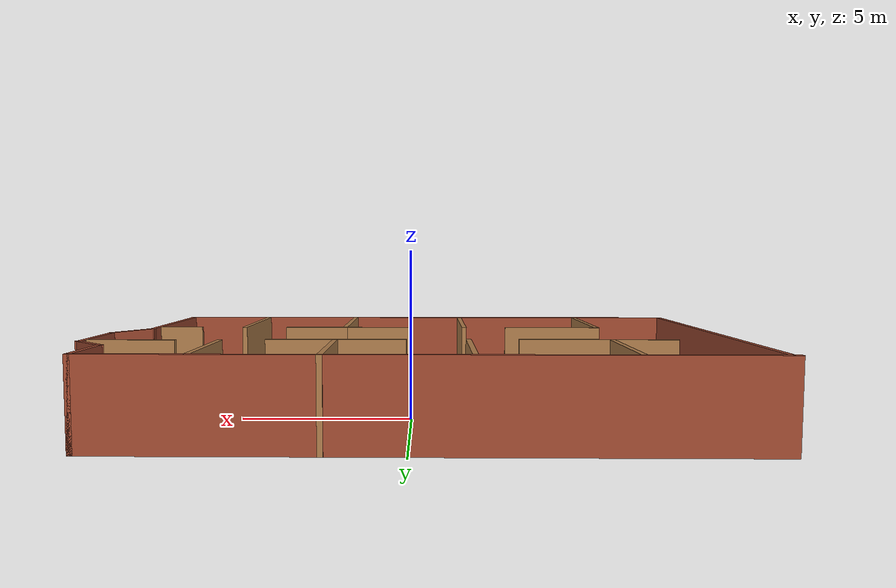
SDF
<?xml version='1.0'?>
<sdf version='1.6'>
  <model name='mybuilding'>
    <pose frame=''>-0.077377 -1.31008 0 0 -0 0</pose>
    <link name='Wall_10'>
      <collision name='Wall_10_Collision'>
        <geometry>
          <box>
            <size>17.75 0.15 2.5</size>
          </box>
        </geometry>
        <pose frame=''>0 0 1.25 0 -0 0</pose>
      </collision>
      <visual name='Wall_10_Visual'>
        <pose frame=''>0 0 1.25 0 -0 0</pose>
        <geometry>
          <box>
            <size>17.75 0.15 2.5</size>
          </box>
        </geometry>
        <material>
          <script>
            <uri>file://media/materials/scripts/gazebo.material</uri>
            <name>Gazebo/Bricks</name>
          </script>
          <ambient>1 1 1 1</ambient>
        </material>
        <meta>
          <layer>0</layer>
        </meta>
      </visual>
      <pose frame=''>-0.49283 6.05016 0 0 -0 0</pose>
    </link>
    <link name='Wall_11'>
      <collision name='Wall_11_Collision'>
        <geometry>
          <box>
            <size>2.25 0.15 2.5</size>
          </box>
        </geometry>
        <pose frame=''>0 0 1.25 0 -0 0</pose>
      </collision>
      <visual name='Wall_11_Visual'>
        <pose frame=''>0 0 1.25 0 -0 0</pose>
        <geometry>
          <box>
            <size>2.25 0.15 2.5</size>
          </box>
        </geometry>
        <material>
          <script>
            <uri>file://media/materials/scripts/gazebo.material</uri>
            <name>Gazebo/Bricks</name>
          </script>
          <ambient>1 1 1 1</ambient>
        </material>
        <meta>
          <layer>0</layer>
        </meta>
      </visual>
      <pose frame=''>8.30717 5.00016 0 0 0 -1.5708</pose>
    </link>
    <link name='Wall_12'>
      <collision name='Wall_12_Collision'>
        <geometry>
          <box>
            <size>1.5 0.15 2.5</size>
          </box>
        </geometry>
        <pose frame=''>0 0 1.25 0 -0 0</pose>
      </collision>
      <visual name='Wall_12_Visual'>
        <pose frame=''>0 0 1.25 0 -0 0</pose>
        <geometry>
          <box>
            <size>1.5 0.15 2.5</size>
          </box>
        </geometry>
        <material>
          <script>
            <uri>file://media/materials/scripts/gazebo.material</uri>
            <name>Gazebo/Bricks</name>
          </script>
          <ambient>1 1 1 1</ambient>
        </material>
        <meta>
          <layer>0</layer>
        </meta>
      </visual>
      <pose frame=''>8.78447 3.47287 0 0 0 -0.785398</pose>
    </link>
    <link name='Wall_13'>
      <collision name='Wall_13_Collision'>
        <geometry>
          <box>
            <size>2.75 0.15 2.5</size>
          </box>
        </geometry>
        <pose frame=''>0 0 1.25 0 -0 0</pose>
      </collision>
      <visual name='Wall_13_Visual'>
        <pose frame=''>0 0 1.25 0 -0 0</pose>
        <geometry>
          <box>
            <size>2.75 0.15 2.5</size>
          </box>
        </geometry>
        <material>
          <script>
            <uri>file://media/materials/scripts/gazebo.material</uri>
            <name>Gazebo/Bricks</name>
          </script>
          <ambient>1 1 1 1</ambient>
        </material>
        <meta>
          <layer>0</layer>
        </meta>
      </visual>
      <pose frame=''>9.26177 1.69557 0 0 0 -1.5708</pose>
    </link>
    <link name='Wall_14'>
      <collision name='Wall_14_Collision'>
        <geometry>
          <box>
            <size>1.75 0.15 2.5</size>
          </box>
        </geometry>
        <pose frame=''>0 0 1.25 0 -0 0</pose>
      </collision>
      <visual name='Wall_14_Visual'>
        <pose frame=''>0 0 1.25 0 -0 0</pose>
        <geometry>
          <box>
            <size>1.75 0.15 2.5</size>
          </box>
        </geometry>
        <material>
          <script>
            <uri>file://media/materials/scripts/gazebo.material</uri>
            <name>Gazebo/Bricks</name>
          </script>
          <ambient>1 1 1 1</ambient>
        </material>
        <meta>
          <layer>0</layer>
        </meta>
      </visual>
      <pose frame=''>8.86176 -0.297251 0 0 0 -2.0944</pose>
    </link>
    <link name='Wall_15'>
      <collision name='Wall_15_Collision'>
        <geometry>
          <box>
            <size>5.25 0.15 2.5</size>
          </box>
        </geometry>
        <pose frame=''>0 0 1.25 0 -0 0</pose>
      </collision>
      <visual name='Wall_15_Visual'>
        <pose frame=''>0 0 1.25 0 -0 0</pose>
        <geometry>
          <box>
            <size>5.25 0.15 2.5</size>
          </box>
        </geometry>
        <material>
          <script>
            <uri>file://media/materials/scripts/gazebo.material</uri>
            <name>Gazebo/Bricks</name>
          </script>
          <ambient>1 1 1 1</ambient>
        </material>
        <meta>
          <layer>0</layer>
        </meta>
      </visual>
      <pose frame=''>8.46176 -3.54007 0 0 0 -1.5708</pose>
    </link>
    <link name='Wall_16'>
      <collision name='Wall_16_Collision'>
        <geometry>
          <box>
            <size>17.75 0.15 2.5</size>
          </box>
        </geometry>
        <pose frame=''>0 0 1.25 0 -0 0</pose>
      </collision>
      <visual name='Wall_16_Visual'>
        <pose frame=''>0 0 1.25 0 -0 0</pose>
        <geometry>
          <box>
            <size>17.75 0.15 2.5</size>
          </box>
        </geometry>
        <material>
          <script>
            <uri>file://media/materials/scripts/gazebo.material</uri>
            <name>Gazebo/Bricks</name>
          </script>
          <ambient>1 1 1 1</ambient>
        </material>
        <meta>
          <layer>0</layer>
        </meta>
      </visual>
      <pose frame=''>-0.338236 -6.09007 0 0 -0 3.14159</pose>
    </link>
    <link name='Wall_17'>
      <collision name='Wall_17_Collision'>
        <geometry>
          <box>
            <size>12.25 0.15 2.5</size>
          </box>
        </geometry>
        <pose frame=''>0 0 1.25 0 -0 0</pose>
      </collision>
      <visual name='Wall_17_Visual'>
        <pose frame=''>0 0 1.25 0 -0 0</pose>
        <geometry>
          <box>
            <size>12.25 0.15 2.5</size>
          </box>
        </geometry>
        <material>
          <script>
            <uri>file://media/materials/scripts/gazebo.material</uri>
            <name>Gazebo/Bricks</name>
          </script>
          <ambient>1 1 1 1</ambient>
        </material>
        <meta>
          <layer>0</layer>
        </meta>
      </visual>
      <pose frame=''>-9.13824 -0.040072 0 0 -0 1.5708</pose>
    </link>
    <link name='Wall_27'>
      <collision name='Wall_27_Collision'>
        <geometry>
          <box>
            <size>3.067 0.15 2.5</size>
          </box>
        </geometry>
        <pose frame=''>0 0 1.25 0 -0 0</pose>
      </collision>
      <visual name='Wall_27_Visual'>
        <pose frame=''>0 0 1.25 0 -0 0</pose>
        <geometry>
          <box>
            <size>3.067 0.15 2.5</size>
          </box>
        </geometry>
        <material>
          <script>
            <uri>file://media/materials/scripts/gazebo.material</uri>
            <name>Gazebo/Wood</name>
          </script>
          <ambient>1 1 1 1</ambient>
        </material>
        <meta>
          <layer>0</layer>
        </meta>
      </visual>
      <pose frame=''>-4.48112 -1.63592 0 0 -0 3.14159</pose>
    </link>
    <link name='Wall_28'>
      <collision name='Wall_28_Collision'>
        <geometry>
          <box>
            <size>4.5 0.15 2.5</size>
          </box>
        </geometry>
        <pose frame=''>0 0 1.25 0 -0 0</pose>
      </collision>
      <visual name='Wall_28_Visual'>
        <pose frame=''>0 0 1.25 0 -0 0</pose>
        <geometry>
          <box>
            <size>4.5 0.15 2.5</size>
          </box>
        </geometry>
        <material>
          <script>
            <uri>file://media/materials/scripts/gazebo.material</uri>
            <name>Gazebo/Wood</name>
          </script>
          <ambient>1 1 1 1</ambient>
        </material>
        <meta>
          <layer>0</layer>
        </meta>
      </visual>
      <pose frame=''>-5.93341 -3.81116 0 0 0 -1.56794</pose>
    </link>
    <link name='Wall_33'>
      <collision name='Wall_33_Collision'>
        <geometry>
          <box>
            <size>4.5 0.15 2.5</size>
          </box>
        </geometry>
        <pose frame=''>0 0 1.25 0 -0 0</pose>
      </collision>
      <visual name='Wall_33_Visual'>
        <pose frame=''>0 0 1.25 0 -0 0</pose>
        <geometry>
          <box>
            <size>4.5 0.15 2.5</size>
          </box>
        </geometry>
        <material>
          <script>
            <uri>file://media/materials/scripts/gazebo.material</uri>
            <name>Gazebo/Wood</name>
          </script>
          <ambient>1 1 1 1</ambient>
        </material>
        <meta>
          <layer>0</layer>
        </meta>
      </visual>
      <pose frame=''>-1.60627 -3.8114 0 0 0 -1.5708</pose>
    </link>
    <link name='Wall_36'>
      <collision name='Wall_36_Collision'>
        <geometry>
          <box>
            <size>4.5 0.15 2.5</size>
          </box>
        </geometry>
        <pose frame=''>0 0 1.25 0 -0 0</pose>
      </collision>
      <visual name='Wall_36_Visual'>
        <pose frame=''>0 0 1.25 0 -0 0</pose>
        <geometry>
          <box>
            <size>4.5 0.15 2.5</size>
          </box>
        </geometry>
        <material>
          <script>
            <uri>file://media/materials/scripts/gazebo.material</uri>
            <name>Gazebo/Wood</name>
          </script>
          <ambient>1 1 1 1</ambient>
        </material>
        <meta>
          <layer>0</layer>
        </meta>
      </visual>
      <pose frame=''>2.29548 -3.77093 0 0 0 -1.57075</pose>
    </link>
    <link name='Wall_40'>
      <collision name='Wall_40_Collision'>
        <geometry>
          <box>
            <size>4.5 0.15 2.5</size>
          </box>
        </geometry>
        <pose frame=''>0 0 1.25 0 -0 0</pose>
      </collision>
      <visual name='Wall_40_Visual'>
        <pose frame=''>0 0 1.25 0 -0 0</pose>
        <geometry>
          <box>
            <size>4.5 0.15 2.5</size>
          </box>
        </geometry>
        <material>
          <script>
            <uri>file://media/materials/scripts/gazebo.material</uri>
            <name>Gazebo/Wood</name>
          </script>
          <ambient>1 1 1 1</ambient>
        </material>
        <meta>
          <layer>0</layer>
        </meta>
      </visual>
      <pose frame=''>5.59482 -3.8114 0 0 0 -1.5708</pose>
    </link>
    <link name='Wall_45'>
      <collision name='Wall_45_Collision'>
        <geometry>
          <box>
            <size>2.25 0.15 2.5</size>
          </box>
        </geometry>
        <pose frame=''>0 0 1.25 0 -0 0</pose>
      </collision>
      <visual name='Wall_45_Visual'>
        <pose frame=''>0 0 1.25 0 -0 0</pose>
        <geometry>
          <box>
            <size>2.25 0.15 2.5</size>
          </box>
        </geometry>
        <material>
          <script>
            <uri>file://media/materials/scripts/gazebo.material</uri>
            <name>Gazebo/Wood</name>
          </script>
          <ambient>1 1 1 1</ambient>
        </material>
        <meta>
          <layer>0</layer>
        </meta>
      </visual>
      <pose frame=''>1.24538 -1.59592 0 0 -0 3.14159</pose>
    </link>
    <link name='Wall_47'>
      <collision name='Wall_47_Collision'>
        <geometry>
          <box>
            <size>2 0.15 2.5</size>
          </box>
        </geometry>
        <pose frame=''>0 0 1.25 0 -0 0</pose>
      </collision>
      <visual name='Wall_47_Visual'>
        <pose frame=''>0 0 1.25 0 -0 0</pose>
        <geometry>
          <box>
            <size>2 0.15 2.5</size>
          </box>
        </geometry>
        <material>
          <script>
            <uri>file://media/materials/scripts/gazebo.material</uri>
            <name>Gazebo/Wood</name>
          </script>
          <ambient>1 1 1 1</ambient>
        </material>
        <meta>
          <layer>0</layer>
        </meta>
      </visual>
      <pose frame=''>3.22038 -1.59592 0 0 -0 0</pose>
    </link>
    <link name='Wall_49'>
      <collision name='Wall_49_Collision'>
        <geometry>
          <box>
            <size>1.5 0.15 2.5</size>
          </box>
        </geometry>
        <pose frame=''>0 0 1.25 0 -0 0</pose>
      </collision>
      <visual name='Wall_49_Visual'>
        <pose frame=''>0 0 1.25 0 -0 0</pose>
        <geometry>
          <box>
            <size>1.5 0.15 2.5</size>
          </box>
        </geometry>
        <material>
          <script>
            <uri>file://media/materials/scripts/gazebo.material</uri>
            <name>Gazebo/Wood</name>
          </script>
          <ambient>1 1 1 1</ambient>
        </material>
        <meta>
          <layer>0</layer>
        </meta>
      </visual>
      <pose frame=''>7.76668 -1.71731 0 0 -0 0</pose>
    </link>
    <link name='Wall_51'>
      <collision name='Wall_51_Collision'>
        <geometry>
          <box>
            <size>3.5 0.15 2.5</size>
          </box>
        </geometry>
        <pose frame=''>0 0 1.25 0 -0 0</pose>
      </collision>
      <visual name='Wall_51_Visual'>
        <pose frame=''>0 0 1.25 0 -0 0</pose>
        <geometry>
          <box>
            <size>3.5 0.15 2.5</size>
          </box>
        </geometry>
        <material>
          <script>
            <uri>file://media/materials/scripts/gazebo.material</uri>
            <name>Gazebo/Wood</name>
          </script>
          <ambient>1 1 1 1</ambient>
        </material>
        <meta>
          <layer>0</layer>
        </meta>
      </visual>
      <pose frame=''>5.433 4.33471 0 0 0 -1.5708</pose>
    </link>
    <link name='Wall_53'>
      <collision name='Wall_53_Collision'>
        <geometry>
          <box>
            <size>2.5 0.15 2.5</size>
          </box>
        </geometry>
        <pose frame=''>0 0 1.25 0 -0 0</pose>
      </collision>
      <visual name='Wall_53_Visual'>
        <pose frame=''>0 0 1.25 0 -0 0</pose>
        <geometry>
          <box>
            <size>2.5 0.15 2.5</size>
          </box>
        </geometry>
        <material>
          <script>
            <uri>file://media/materials/scripts/gazebo.material</uri>
            <name>Gazebo/Wood</name>
          </script>
          <ambient>1 1 1 1</ambient>
        </material>
        <meta>
          <layer>0</layer>
        </meta>
      </visual>
      <pose frame=''>7.94303 2.57098 0 0 -0 0</pose>
    </link>
    <link name='Wall_55'>
      <collision name='Wall_55_Collision'>
        <geometry>
          <box>
            <size>4 0.15 2.5</size>
          </box>
        </geometry>
        <pose frame=''>0 0 1.25 0 -0 0</pose>
      </collision>
      <visual name='Wall_55_Visual'>
        <pose frame=''>0 0 1.25 0 -0 0</pose>
        <geometry>
          <box>
            <size>4 0.15 2.5</size>
          </box>
        </geometry>
        <material>
          <script>
            <uri>file://media/materials/scripts/gazebo.material</uri>
            <name>Gazebo/Wood</name>
          </script>
          <ambient>1 1 1 1</ambient>
        </material>
        <meta>
          <layer>0</layer>
        </meta>
      </visual>
      <pose frame=''>2.1875 2.3687 0 0 -0 3.14159</pose>
    </link>
    <link name='Wall_61'>
      <collision name='Wall_61_Collision'>
        <geometry>
          <box>
            <size>3.75 0.15 2.5</size>
          </box>
        </geometry>
        <pose frame=''>0 0 1.25 0 -0 0</pose>
      </collision>
      <visual name='Wall_61_Visual'>
        <pose frame=''>0 0 1.25 0 -0 0</pose>
        <geometry>
          <box>
            <size>3.75 0.15 2.5</size>
          </box>
        </geometry>
        <material>
          <script>
            <uri>file://media/materials/scripts/gazebo.material</uri>
            <name>Gazebo/Wood</name>
          </script>
          <ambient>1 1 1 1</ambient>
        </material>
        <meta>
          <layer>0</layer>
        </meta>
      </visual>
      <pose frame=''>2.19655 4.29007 0 0 -0 1.5708</pose>
    </link>
    <link name='Wall_64'>
      <collision name='Wall_64_Collision'>
        <geometry>
          <box>
            <size>3.75 0.15 2.5</size>
          </box>
        </geometry>
        <pose frame=''>0 0 1.25 0 -0 0</pose>
      </collision>
      <visual name='Wall_64_Visual'>
        <pose frame=''>0 0 1.25 0 -0 0</pose>
        <geometry>
          <box>
            <size>3.75 0.15 2.5</size>
          </box>
        </geometry>
        <material>
          <script>
            <uri>file://media/materials/scripts/gazebo.material</uri>
            <name>Gazebo/Wood</name>
          </script>
          <ambient>1 1 1 1</ambient>
        </material>
        <meta>
          <layer>0</layer>
        </meta>
      </visual>
      <pose frame=''>-1.56581 4.12825 0 0 -0 1.5708</pose>
    </link>
    <link name='Wall_66'>
      <collision name='Wall_66_Collision'>
        <geometry>
          <box>
            <size>4.5 0.15 2.5</size>
          </box>
        </geometry>
        <pose frame=''>0 0 1.25 0 -0 0</pose>
      </collision>
      <visual name='Wall_66_Visual'>
        <pose frame=''>0 0 1.25 0 -0 0</pose>
        <geometry>
          <box>
            <size>4.5 0.15 2.5</size>
          </box>
        </geometry>
        <material>
          <script>
            <uri>file://media/materials/scripts/gazebo.material</uri>
            <name>Gazebo/Wood</name>
          </script>
          <ambient>1 1 1 1</ambient>
        </material>
        <meta>
          <layer>0</layer>
        </meta>
      </visual>
      <pose frame=''>-5.23767 2.32825 0 0 -0 3.14159</pose>
    </link>
    <link name='Wall_70'>
      <collision name='Wall_70_Collision'>
        <geometry>
          <box>
            <size>3.75 0.15 2.5</size>
          </box>
        </geometry>
        <pose frame=''>0 0 1.25 0 -0 0</pose>
      </collision>
      <visual name='Wall_70_Visual'>
        <pose frame=''>0 0 1.25 0 -0 0</pose>
        <geometry>
          <box>
            <size>3.75 0.15 2.5</size>
          </box>
        </geometry>
        <material>
          <script>
            <uri>file://media/materials/scripts/gazebo.material</uri>
            <name>Gazebo/Wood</name>
          </script>
          <ambient>1 1 1 1</ambient>
        </material>
        <meta>
          <layer>0</layer>
        </meta>
      </visual>
      <pose frame=''>-5.61137 4.12825 0 0 -0 1.5708</pose>
    </link>
    <static>1</static>
  </model>
</sdf>
